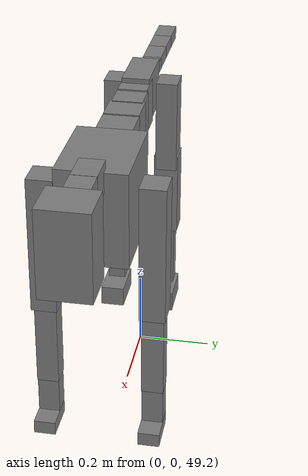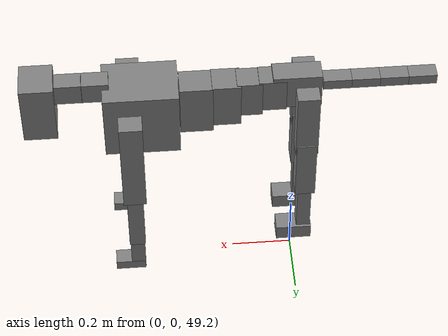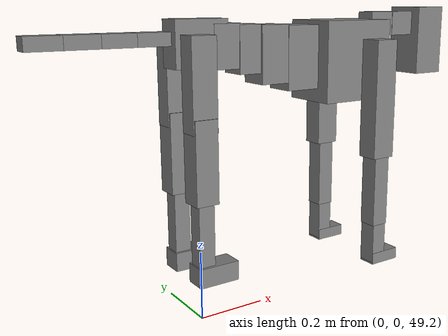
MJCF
<mujoco model="dog">

    <default>
        <joint armature="0.02" stiffness="1" damping="0.2" limited="true"/>
        <geom condim="3" friction="1 0.05 0.05" margin="0.01"/>
        <motor ctrllimited="true" ctrlrange="-1.0 1.0" forcelimited="true" gear="50"/>
    </default>

    <compiler inertiafromgeom="true" angle="radian"/>

    <option timestep="0.016" iterations="50" tolerance="1e-10" solver="Newton" jacobian="dense" cone="pyramidal"/>

    <size nconmax="20000" njmax="60000" nstack="5000000"/>
    <visual>
        <map force="0.1" zfar="30"/>
        <rgba haze="0.15 0.25 0.35 1"/>
        <quality shadowsize="2048"/>
        <global offwidth="800" offheight="800"/>
    </visual>

    <asset>
        <texture type="skybox" builtin="gradient" rgb1="0.3 0.5 0.7" rgb2="0 0 0" width="512" height="512"/>
        <texture name="texplane" type="2d" builtin="checker" rgb1=".2 .3 .4" rgb2=".1 0.15 0.2" width="512" height="512"
                 mark="cross" markrgb=".8 .8 .8"/>
        <texture name="texgeom" type="cube" builtin="flat" mark="cross" width="127" height="1278" rgb1="0.8 0.6 0.4"
                 rgb2="0.8 0.6 0.4" markrgb="1 1 1" random="0.01"/>

        <material name="matplane" reflectance="0.3" texture="texplane" texrepeat="1 1" texuniform="true"/>
        <material name="matgeom" texture="texgeom" texuniform="true" rgba="0.8 0.6 .4 1"/>
    </asset>

    <worldbody>
        <geom name="floor" pos="0 0 0" size="0 0 .25" type="plane" material="matplane" condim="3"/>

        <light directional="false" diffuse=".2 .2 .2" specular="0 0 0" pos="0 0 5" dir="0 0 -1" castshadow="false"/>
        <light mode="targetbodycom" target="torso" directional="false" diffuse=".8 .8 .8" specular="0.3 0.3 0.3"
               pos="0 0 4.0" dir="0 0 -1"/>

        <body name="root" pos="0 0 50">
            <freejoint name="root_1"/>
            <geom type="box" pos="0 0 -0.02" size="0.0774  0.0358  0.063" density="2030"/>

            <body name="spine1" pos="0.054 0 0">
                <joint name="spine1_y" axis="0 1 0" range="0 0.7" limited="true"/>
                <geom type="box" pos="0.02375 0 -0.03" size="0.04375  0.0375  0.05985" density="2030"/>

                <body name="spine2" pos="0.0612 0 0">
                    <joint name="spine2_y" axis="0 1 0" range="-0.15 0.15" limited="true"/>
                    <geom type="box" pos="0.03555  0  -0.04" size="0.04055  0.039  0.06615" density="2030"/>

                    <body name="spine3" pos="0.0730 0 0">
                        <joint name="spine3_y" axis="0 1 0" range="-0.15 0.15" limited="true"/>
                        <geom type="box" pos="0.03555  0  -0.057" size="0.04555  0.0445  0.081" density="2030"/>

                        <body name="spine4" pos="0.0780 0 0">
                            <joint name="spine4_y" axis="0 1 0" range="-0.15 0.15" limited="true"/>
                            <geom type="box" pos="0.05265  0  -0.07" size="0.05265  0.045  0.09135" density="2030"/>

                            <body name="torso" pos="0.1082 0 0">
                                <joint name="torso_y" axis="0 1 0" range="-0.15 0.15" limited="true"/>
                                <geom type="box" pos="0.11925  0  -0.085" size="0.11925  0.085  0.11745"
                                      density="2030"/>

                                <body name="neck1" pos="0.2160  0   0.0180">
                                    <joint name="neck1_y" axis="0 1 0" range="-1.2  -1" limited="true"/>
                                    <geom type="box" pos="0.0423  0  0" size="0.0423  0.03  0.036" density="2325"/>

                                    <body name="neck2" pos="0.0853  0  0">
                                        <joint name="neck2_y" axis="0 1 0" range="0.1  0" limited="true"/>
                                        <geom type="box" pos="0.0423  0  0" size="0.0423  0.03  0.036" density="2325"/>

                                        <body name="head" pos="0.0853  0  0">
                                            <joint name="head_y" axis="0 1 0" range="-0.3  -0.2" limited="true"/>
                                            <geom type="box" pos="0.0531  0  -0.055" size="0.0531  0.06  0.1044"
                                                  density="4030"/>

                                        </body>
                                    </body>
                                </body>

                                <body name="front_shoulder" pos="0.156  0   -0.0480">
                                    <joint name="front_shoulder_y" axis="0 1 0" range="-1 1.5" limited="true"/>
                                    <geom type="box" pos="0 0.13 -0.1464" size="0.0370  0.0316  0.1731" density="1158"/>
                                    <geom type="box" pos="0 -0.13 -0.1464" size="0.0370  0.0316  0.1731"
                                          density="1158"/>

                                    <body name="front_elbow" pos="0  0  -0.2929">
                                        <joint name="front_elbow_y" axis="0 1 0" range="-2 0" limited="true"/>
                                        <geom type="box" pos="0 0.13 -0.1179" size="0.0263  0.0269  0.1179"
                                              density="1081"/>
                                        <geom type="box" pos="0 -0.13 -0.1179" size="0.0263  0.0269  0.1179"
                                              density="1081"/>

                                        <body name="front_wrist" pos="0  0  -0.2357">
                                            <joint name="front_wrist_y" axis="0 1 0" range="-0.2 0" limited="true"/>
                                            <geom type="box" pos="0 0.13 -0.0526" size="0.0236  0.0262  0.0657"
                                                  density="1664"/>
                                            <geom type="box" pos="0 -0.13 -0.0526" size="0.0236  0.0262  0.0657"
                                                  density="1664"/>

                                            <body name="front_finger_end" pos="0  0  -0.1051">
                                                <joint name="front_finger_y" axis="0 1 0" range="-0.4 1"
                                                       limited="true"/>
                                                <geom type="box" pos="0.0267  0.13  -0.0022"
                                                      size="0.0489  0.0267  0.0172" density="1515"/>
                                                <geom type="box" pos="0.0267  -0.13  -0.0022"
                                                      size="0.0489  0.0267  0.0172" density="1515"/>

                                            </body>

                                        </body>
                                    </body>
                                </body>

                            </body>
                        </body>
                    </body>
                </body>
            </body>

            <body name="back_hip" pos="-0.03 0 -0.018">
                <joint name="back_hip_y" axis="0 1 0" range="-1.5 0.3" limited="true"/>
                <geom type="box" pos="0 0.07 -0.1013" size="0.0359  0.0282  0.1241" density="1154"/>
                <geom type="box" pos="0 -0.07 -0.1013" size="0.0359  0.0282  0.1241" density="1154"/>

                <body name="back_knee" pos="0  0  -0.2026">
                    <joint name="back_knee_y" axis="0 1 0" range="0 2.8" limited="true"/>
                    <geom type="box" pos="0 0.07 -0.0976" size="0.0328  0.0323  0.1132" density="1227"/>
                    <geom type="box" pos="0 -0.07 -0.0976" size="0.0328  0.0323  0.1132" density="1227"/>

                    <body name="back_ankle" pos="0  0  -0.1953">
                        <joint name="back_ankle_y" axis="0 1 0" range="-2.2 0" limited="true"/>
                        <geom type="box" pos="0 0.07 -0.1008" size="0.0229  0.0229  0.1120" density="1284"/>
                        <geom type="box" pos="0 -0.07 -0.1008" size="0.0229  0.0229  0.1120" density="1284"/>

                        <body name="back_toe_end" pos="0  0  -0.2015">
                            <joint name="back_toe_y" axis="0 1 0" range="-0.4 1" limited="true"/>
                            <geom type="box" pos="0.0318  0.07  -0.0120" size="0.0584  0.0318  0.0270" density="1515"/>
                            <geom type="box" pos="0.0318  -0.07  -0.0120" size="0.0584  0.0318  0.0270" density="1515"/>

                        </body>
                    </body>
                </body>
            </body>

            <body name="tail1" pos="-0.074 0 -0.006">
                <joint name="tail1_y" axis="0 1 0" range="-0.2 0.2" limited="true"/>
                <geom type="box" pos="-0.0536  0  0" size="0.045  0.025  0.0175" density="1587"/>

                <body name="tail2" pos="-0.09 0 0">
                    <joint name="tail2_y" axis="0 1 0" range="-0.2 0.2" limited="true"/>
                    <geom type="box" pos="-0.0536  0  0" size="0.045  0.025  0.0175" density="1587"/>

                    <body name="tail3" pos="-0.09 0 0">
                        <joint name="tail3_y" axis="0 1 0" range="-0.2 0.2" limited="true"/>
                        <geom type="box" pos="-0.0536  0  0" size="0.045  0.025  0.0175" density="1587"/>

                        <body name="tail4" pos="-0.09 0 0">
                            <joint name="tail4_y" axis="0 1 0" range="-0.2 0.2" limited="true"/>
                            <geom type="box" pos="-0.0536  0  0" size="0.045  0.025  0.0175" density="1587"/>

                        </body>
                    </body>
                </body>
            </body>
        </body>
    </worldbody>

    <actuator>
        <motor joint="spine1_y" forcerange="-150 150     "/>
        <motor joint="spine2_y" forcerange="-150 150     "/>
        <motor joint="spine3_y" forcerange="-150 150     "/>
        <motor joint="spine4_y" forcerange="-150 150     "/>
        <motor joint="torso_y" forcerange="-150 150     "/>
        <motor joint="neck1_y" forcerange="-100 100       "/>
        <motor joint="neck2_y" forcerange="-100 100       "/>
        <motor joint="head_y" forcerange="-150 150       "/>
        <motor joint="front_shoulder_y" forcerange="-135.00 175.62"/>
        <motor joint="front_elbow_y" forcerange="-142.55 153.07"/>
        <motor joint="front_wrist_y" forcerange="-61.66 147.97"/>
        <motor joint="front_finger_y" forcerange="-48.71 53.43"/>
        <motor joint="back_hip_y" forcerange="-223.13 352.43"/>
        <motor joint="back_knee_y" forcerange="-290.38 379.93"/>
        <motor joint="back_angle_y" forcerange="-137.17 128.58"/>
        <motor joint="back_toe_y" forcerange="-94.21 80.49"/>
        <motor joint="tail1_y" forcerange="-50 50     "/>
        <motor joint="tail2_y" forcerange="-50 50     "/>
        <motor joint="tail3_y" forcerange="-50 50     "/>
        <motor joint="tail4_y" forcerange="-50 50     "/>
    </actuator>
</mujoco>
